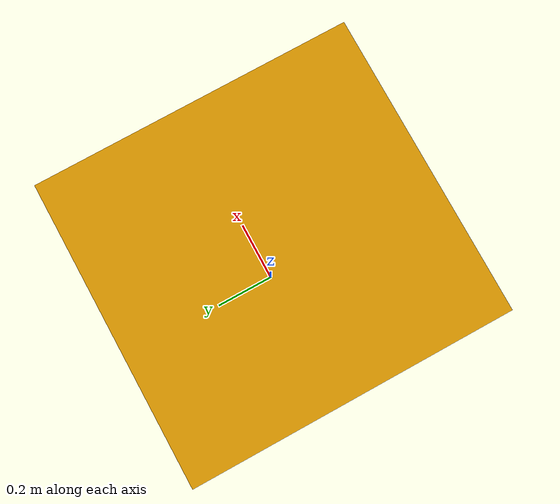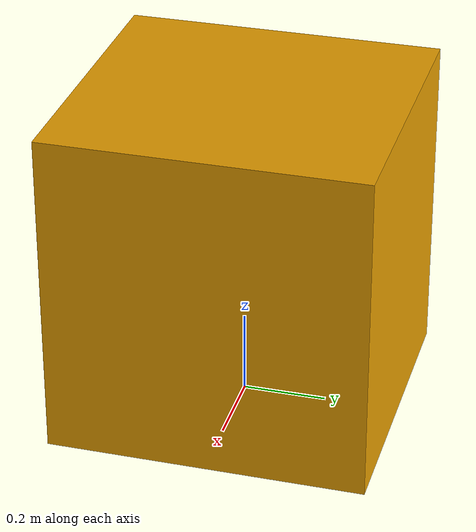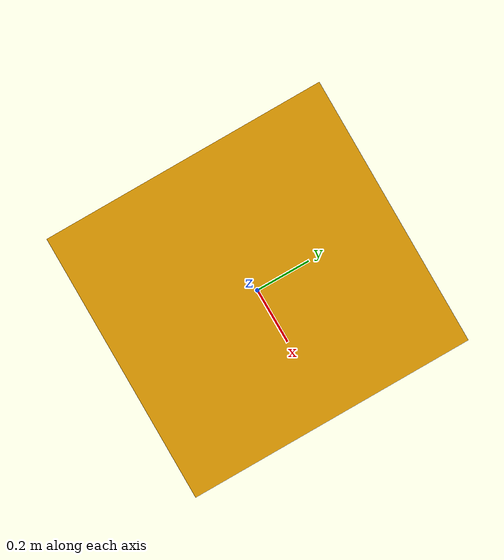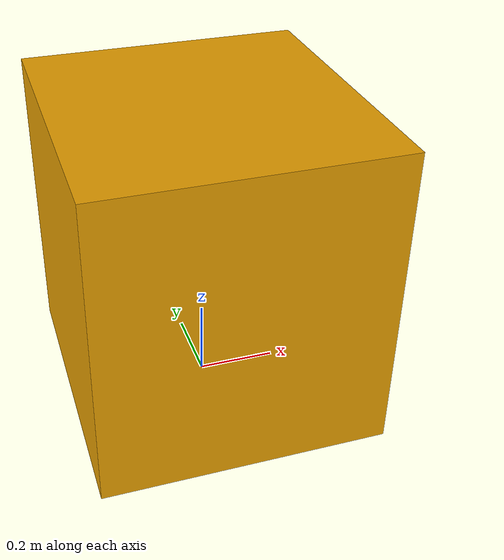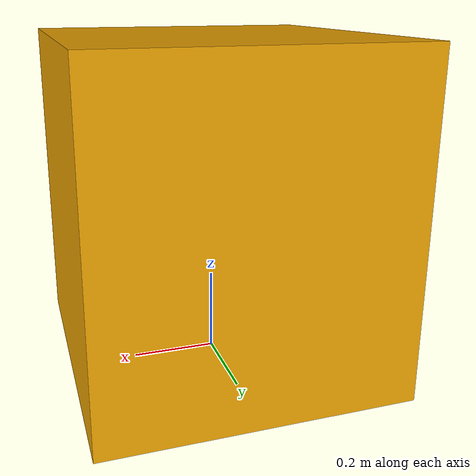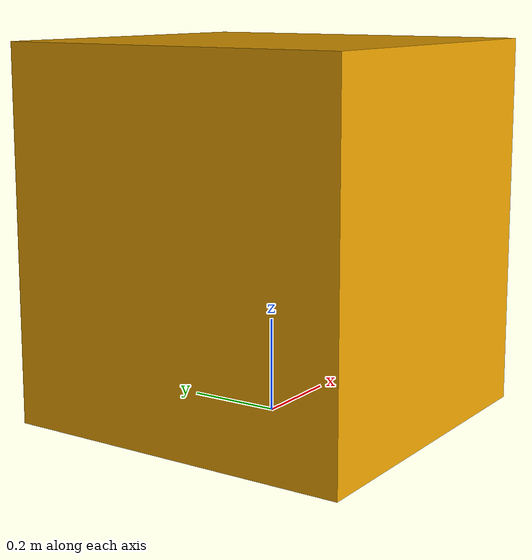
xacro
<?xml version = "1.0"?>
<robot name="workspace">
  <link name="workspace_link">
    <visual>
       <geometry>
	   <box size="0.72 0.76 0.79"/>
	</geometry>
    </visual>
    <collision>
       <geometry>
	   <box size="0.72 0.76 0.79"/>
	</geometry>
    </collision>
    <inertial>
    	<mass value="50"/>
      <inertia ixx="0.1" ixy="0" ixz="0" iyy="0.1" iyz="0" izz="0.1"/>
    </inertial>
  </link>
  <gazebo reference="workspace_link">
      <dampingFactor>0.005</dampingFactor>
      <kp>1000000</kp>
      <kd>1.0</kd>
      <mu1>1.0</mu1>
      <mu2>1.0</mu2>
  </gazebo>

  <link name = "world"/>
  <joint name="workspace_joint" type="fixed">
    <parent link="world" />
    <child link = "workspace_link" />
    <origin xyz="0. 0. 0.395" rpy="0.0 0.0 0.0" />
  </joint>
</robot>
